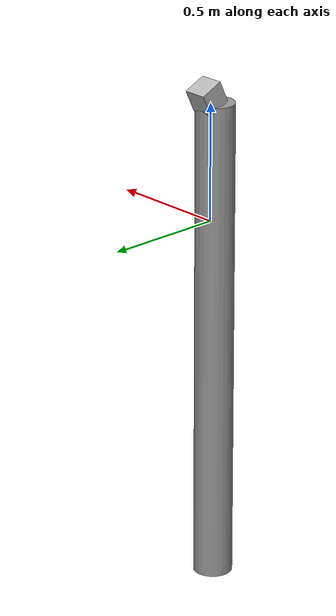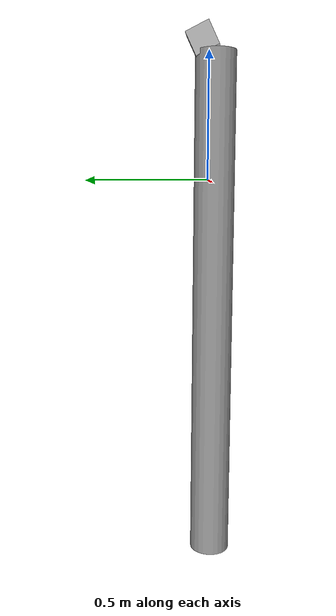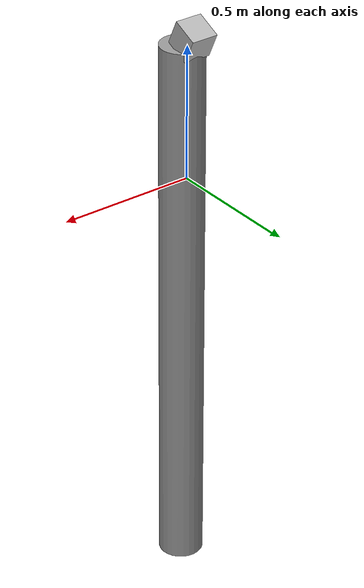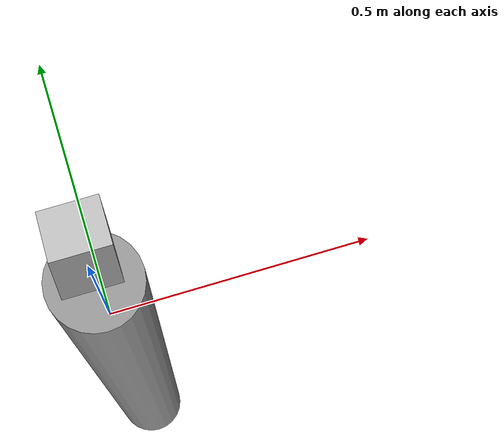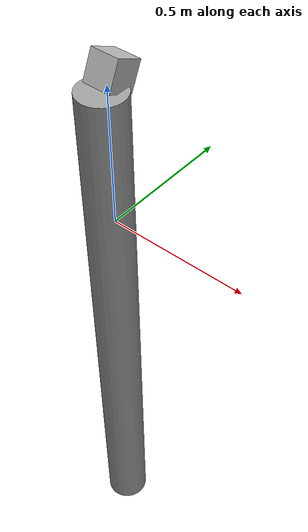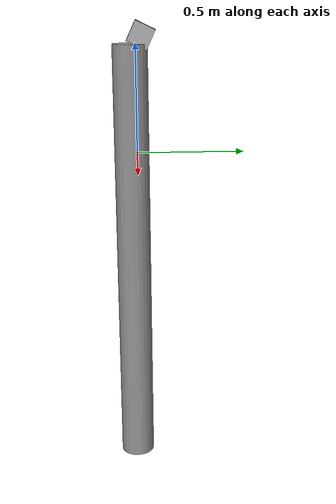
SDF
<?xml version='1.0'?>
<sdf version='1.7'>
  <model name='pole_cam'>
    <link name='link_0'>
      <inertial>
        <mass>0.0536127</mass>
        <inertia>
          <ixx>0.0190539</ixx>
          <ixy>0</ixy>
          <ixz>0</ixz>
          <iyy>0.0190539</iyy>
          <iyz>0</iyz>
          <izz>0.000174877</izz>
        </inertia>
        <pose>0 0 0 0 -0 0</pose>
      </inertial>
      <pose>0.002386 -0.025273 -0.53391 0 -0 0</pose>
      <visual name='visual'>
        <pose>0 0 0 0 -0 0</pose>
        <geometry>
          <cylinder>
            <radius>0.0807696</radius>
            <length>2.06039</length>
          </cylinder>
        </geometry>
        <material>
          <lighting>1</lighting>
          <script>
            <uri>file://media/materials/scripts/gazebo.material</uri>
            <name>Gazebo/Grey</name>
          </script>
          <shader type='pixel'/>
        </material>
        <transparency>0</transparency>
        <cast_shadows>1</cast_shadows>
      </visual>
      <collision name='collision'>
        <laser_retro>0</laser_retro>
        <max_contacts>10</max_contacts>
        <pose>0 0 0 0 -0 0</pose>
        <geometry>
          <cylinder>
            <radius>0.08077</radius>
            <length>2.06039</length>
          </cylinder>
        </geometry>
        <surface>
          <friction>
            <ode>
              <mu>1</mu>
              <mu2>1</mu2>
              <fdir1>0 0 0</fdir1>
              <slip1>0</slip1>
              <slip2>0</slip2>
            </ode>
            <torsional>
              <coefficient>1</coefficient>
              <patch_radius>0</patch_radius>
              <surface_radius>0</surface_radius>
              <use_patch_radius>1</use_patch_radius>
              <ode>
                <slip>0</slip>
              </ode>
            </torsional>
          </friction>
          <bounce>
            <restitution_coefficient>0</restitution_coefficient>
            <threshold>1e+06</threshold>
          </bounce>
          <contact>
            <collide_without_contact>0</collide_without_contact>
            <collide_without_contact_bitmask>1</collide_without_contact_bitmask>
            <collide_bitmask>1</collide_bitmask>
            <ode>
              <soft_cfm>0</soft_cfm>
              <soft_erp>0.2</soft_erp>
              <kp>1e+13</kp>
              <kd>1</kd>
              <max_vel>0.01</max_vel>
              <min_depth>0</min_depth>
            </ode>
            <bullet>
              <split_impulse>1</split_impulse>
              <split_impulse_penetration_threshold>-0.01</split_impulse_penetration_threshold>
              <soft_cfm>0</soft_cfm>
              <soft_erp>0.2</soft_erp>
              <kp>1e+13</kp>
              <kd>1</kd>
            </bullet>
          </contact>
        </surface>
      </collision>
    </link>
    <model name='camera'>
      <pose>-0.002386 0.025275 0.53391 -0.44153 0 0</pose>
      <link name='link'>
        <inertial>
          <mass>0.1</mass>
          <inertia>
            <ixx>0.000166667</ixx>
            <iyy>0.000166667</iyy>
            <izz>0.000166667</izz>
            <ixy>0</ixy>
            <ixz>0</ixz>
            <iyz>0</iyz>
          </inertia>
        </inertial>
        <collision name='collision'>
          <geometry>
            <box>
              <size>0.1 0.1 0.1</size>
            </box>
          </geometry>
        </collision>
        <visual name='visual'>
          <geometry>
            <box>
              <size>0.1 0.1 0.1</size>
            </box>
          </geometry>
        </visual>
        <sensor name='camera' type='camera'>
          <camera>
            <horizontal_fov>1.047</horizontal_fov>
            <image>
              <width>320</width>
              <height>240</height>
            </image>
            <clip>
              <near>0.1</near>
              <far>100</far>
            </clip>
          </camera>
          <always_on>1</always_on>
          <update_rate>30</update_rate>
          <visualize>1</visualize>
        </sensor>
      </link>
    </model>
    <static>0</static>
    <allow_auto_disable>1</allow_auto_disable>
  </model>
</sdf>
